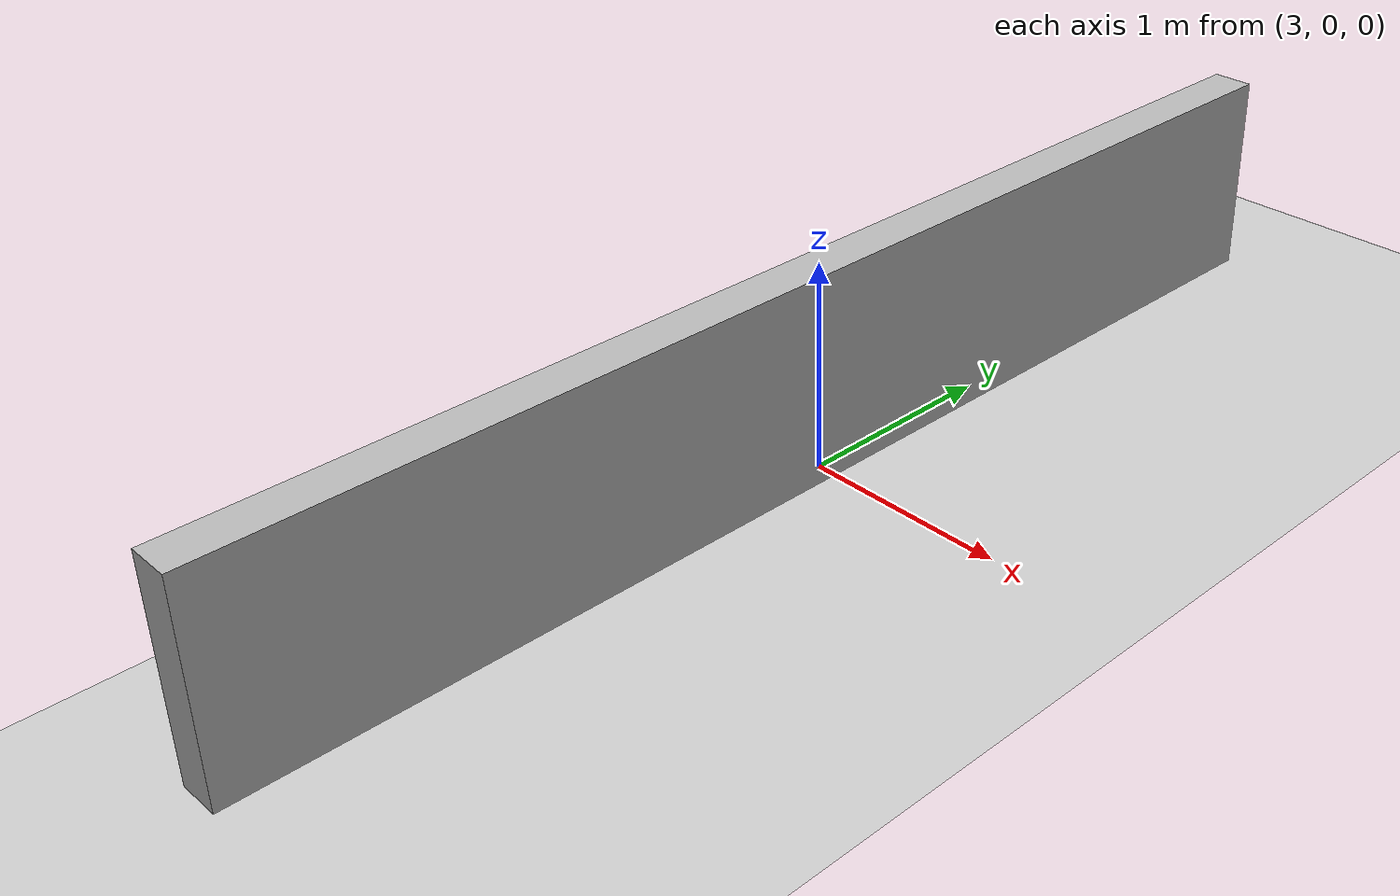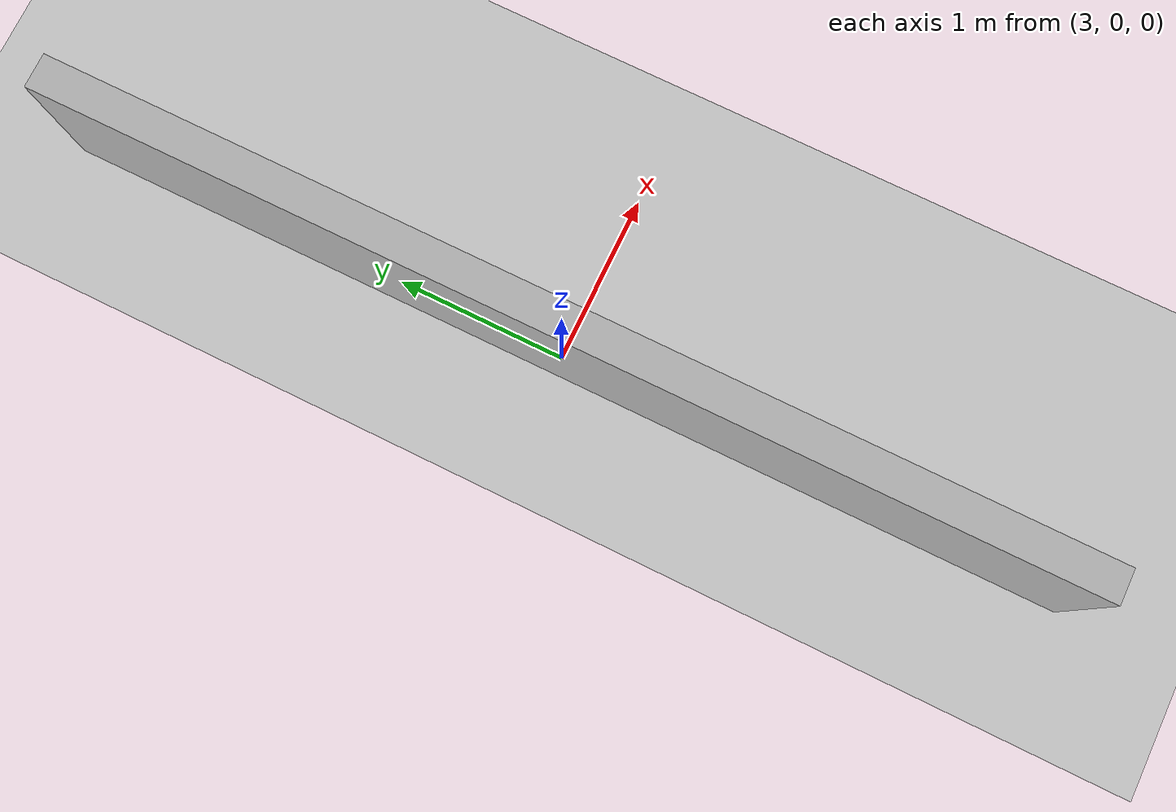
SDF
<sdf version="1.6">
  <world name="hastane">
    <include>
      <uri>model://ground_plane</uri>
    </include>
    <include>
      <uri>model://sun</uri>
    </include>

    <physics type="ode">
      <max_step_size>0.001</max_step_size>
      <real_time_update_rate>1000</real_time_update_rate>
    </physics>

    <!-- Basit engeller -->
    <model name="duvar_1">
      <static>true</static>
      <pose>3 0 0.5 0 0 0</pose>
      <link name="link">
        <collision name="col">
          <geometry><box><size>0.2 6 1</size></box></geometry>
        </collision>
        <visual name="vis">
          <geometry><box><size>0.2 6 1</size></box></geometry>
        </visual>
      </link>
    </model>

  </world>
</sdf>
